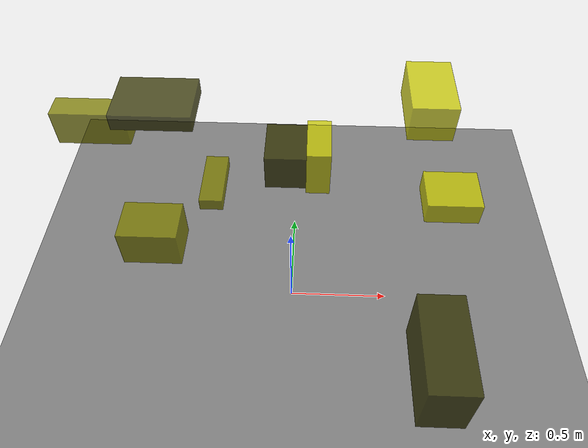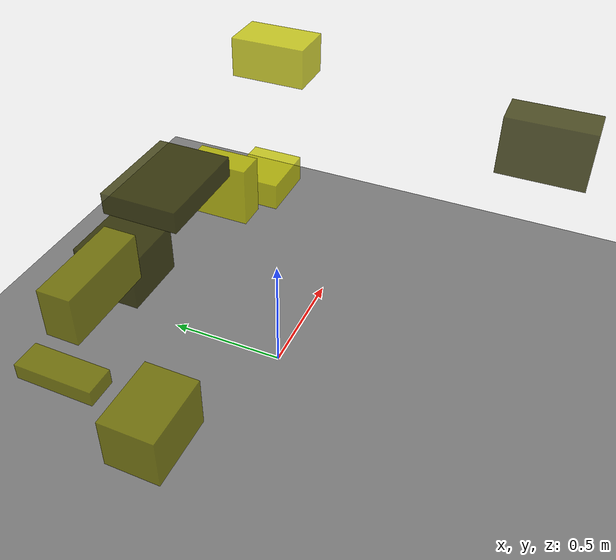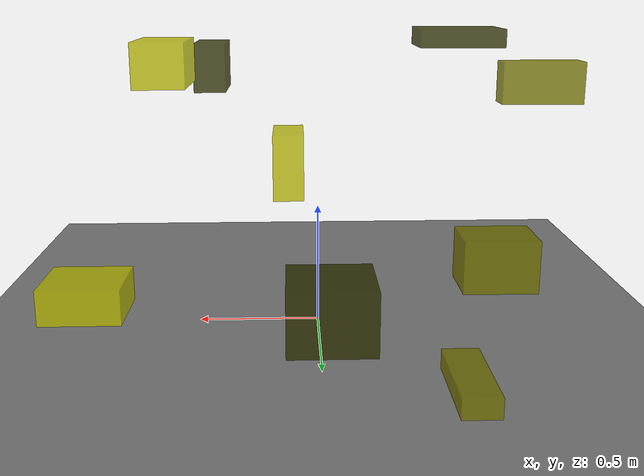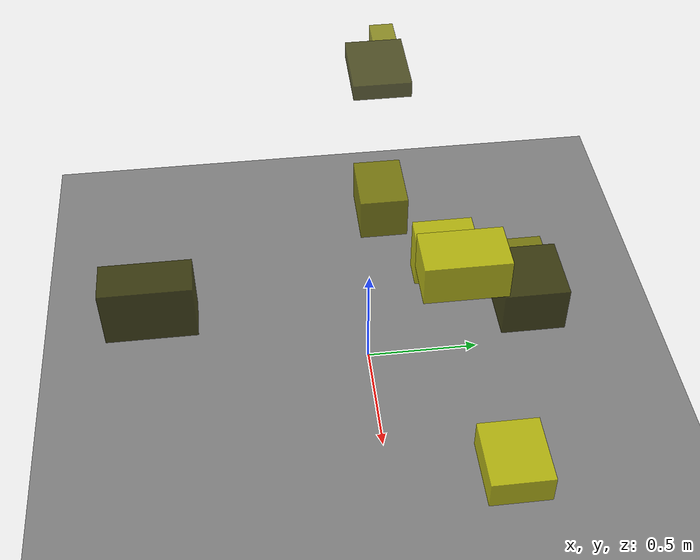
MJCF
<?xml version="1.0"?>
<mujoco model="obstacle_scene">
  <compiler angle="radian" coordinate="local"/>
  <option timestep="0.001" gravity="0 0 -9.81"/>

  <asset>
    <material name="obstacle_mat" rgba="0.8 0.8 0.0 0.8"/>
    <material name="ground_mat" rgba="0.5 0.5 0.5 1"/>
  </asset>

  <worldbody>
    <!-- Ground plane -->
    <geom name="ground" type="plane" size="3 3 0.1" material="ground_mat"/>

    <!-- Obstacles -->
    <body name="obstacle_0" pos="-0.020908 0.713702 0.331958">
      <geom name="obs_0" type="box" size="0.151006 0.142123 0.112021" rgba="0.2 0.2 0.0 0.8"/>
    </body>
    <body name="obstacle_1" pos="-0.498743 0.737279 0.071262">
      <geom name="obs_1" type="box" size="0.068631 0.185739 0.037983" rgba="0.5 0.5 0.0 0.8"/>
    </body>
    <body name="obstacle_2" pos="0.853926 0.463120 0.297080">
      <geom name="obs_2" type="box" size="0.146801 0.126564 0.065939" rgba="0.8 0.8 0.0 0.8"/>
    </body>
    <body name="obstacle_3" pos="-0.536140 0.098021 1.196486">
      <geom name="obs_3" type="box" size="0.159788 0.120066 0.034368" rgba="0.2 0.2 0.0 0.8"/>
    </body>
    <body name="obstacle_4" pos="-0.717979 0.145382 0.306998">
      <geom name="obs_4" type="box" size="0.150642 0.111963 0.108039" rgba="0.5 0.5 0.0 0.8"/>
    </body>
    <body name="obstacle_5" pos="0.569636 0.259734 1.116163">
      <geom name="obs_5" type="box" size="0.093611 0.155330 0.082074" rgba="0.8 0.8 0.0 0.8"/>
    </body>
    <body name="obstacle_6" pos="0.503053 -0.862608 0.999123">
      <geom name="obs_6" type="box" size="0.076651 0.165767 0.116935" rgba="0.2 0.2 0.0 0.8"/>
    </body>
    <body name="obstacle_7" pos="-0.846646 0.174804 1.029807">
      <geom name="obs_7" type="box" size="0.155513 0.052771 0.079437" rgba="0.5 0.5 0.0 0.8"/>
    </body>
    <body name="obstacle_8" pos="0.119186 0.283745 0.747369">
      <geom name="obs_8" type="box" size="0.055879 0.120144 0.120015" rgba="0.8 0.8 0.0 0.8"/>
    </body>
  </worldbody>
</mujoco>
